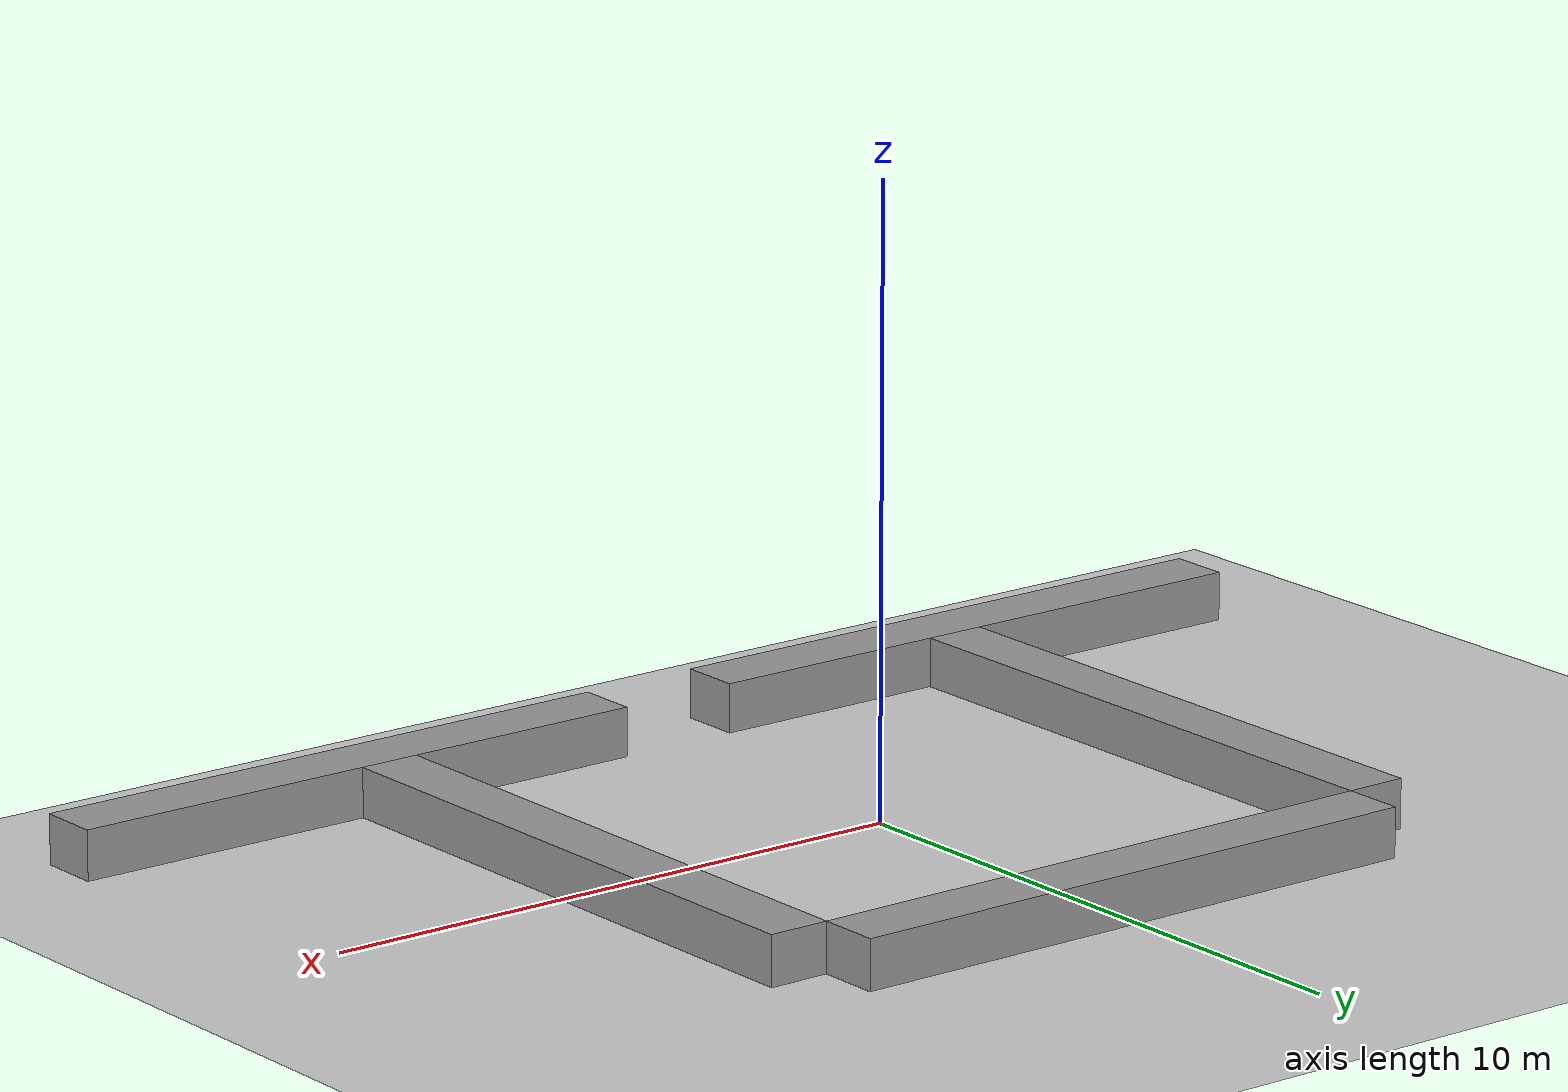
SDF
<sdf version='1.6'>
  <world name='default'>
    <light name='sun' type='directional'>
      <cast_shadows>1</cast_shadows>
      <pose frame=''>0 0 10 0 -0 0</pose>
      <diffuse>0.8 0.8 0.8 1</diffuse>
      <specular>0.1 0.1 0.1 1</specular>
      <attenuation>
        <range>1000</range>
        <constant>0.9</constant>
        <linear>0.01</linear>
        <quadratic>0.001</quadratic>
      </attenuation>
      <direction>-0.5 0.5 -1</direction>
    </light>
    <model name='ground_plane'>
      <static>1</static>
      <link name='link'>
        <collision name='collision'>
          <geometry>
            <plane>
              <normal>0 0 1</normal>
              <size>100 100</size>
            </plane>
          </geometry>
          <surface>
            <friction>
              <ode>
                <mu>1</mu>
                <mu2>1</mu2>
              </ode>
              <torsional>
                <ode/>
              </torsional>
            </friction>
            <contact>
              <ode/>
            </contact>
            <bounce/>
          </surface>
          <max_contacts>10</max_contacts>
        </collision>
        <visual name='visual'>
          <cast_shadows>0</cast_shadows>
          <geometry>
            <plane>
              <normal>0 0 1</normal>
              <size>100 100</size>
            </plane>
          </geometry>
          <material>
            <script>
              <uri>file://media/materials/scripts/gazebo.material</uri>
              <name>Gazebo/Grey</name>
            </script>
          </material>
        </visual>
        <self_collide>0</self_collide>
        <kinematic>0</kinematic>
        <gravity>1</gravity>
      </link>
    </model>
    <gravity>0 0 -9.8</gravity>
    <magnetic_field>6e-06 2.3e-05 -4.2e-05</magnetic_field>
    <atmosphere type='adiabatic'/>
    <physics name='default_physics' default='0' type='bullet'>
      <max_step_size>0.001</max_step_size>
      <real_time_factor>1</real_time_factor>
      <real_time_update_rate>1000</real_time_update_rate>
    </physics>
    <scene>
      <ambient>0.4 0.4 0.4 1</ambient>
      <background>0.7 0.7 0.7 1</background>
      <shadows>1</shadows>
    </scene>
    <spherical_coordinates>
      <surface_model>EARTH_WGS84</surface_model>
      <latitude_deg>0</latitude_deg>
      <longitude_deg>0</longitude_deg>
      <elevation>0</elevation>
      <heading_deg>0</heading_deg>
    </spherical_coordinates>
    <model name='grey_wall_10'>
      <link name='link'>
        <pose frame=''>5.5 0 0.4 0 -0 1.5708</pose>
        <inertial>
          <mass>10</mass>
          <pose frame=''>0 0 0 0 -0 0</pose>
          <inertia>
            <ixx>1</ixx>
            <ixy>0</ixy>
            <ixz>0</ixz>
            <iyy>1</iyy>
            <iyz>0</iyz>
            <izz>1</izz>
          </inertia>
        </inertial>
        <self_collide>0</self_collide>
        <kinematic>0</kinematic>
        <gravity>1</gravity>
        <visual name='visual'>
          <cast_shadows>0</cast_shadows>
          <geometry>
            <box>
              <size>10 1 0.8</size>
            </box>
          </geometry>
          <material>
            <script>
              <uri>model://grey_wall/materials/scripts</uri>
              <uri>model://grey_wall/materials/textures</uri>
              <name>vrc/grey_wall</name>
            </script>
            <ambient>1 1 1 1</ambient>
            <diffuse>1 1 1 1</diffuse>
            <specular>0 0 0 1</specular>
            <emissive>0 0 0 1</emissive>
            <shader type='vertex'>
              <normal_map>__default__</normal_map>
            </shader>
          </material>
          <pose frame=''>0 0 0 0 -0 0</pose>
          <transparency>0</transparency>
        </visual>
        <collision name='collision'>
          <laser_retro>0</laser_retro>
          <max_contacts>10</max_contacts>
          <pose frame=''>0 0 0 0 -0 0</pose>
          <geometry>
            <box>
              <size>10 1 0.8</size>
            </box>
          </geometry>
          <surface>
            <friction>
              <ode>
                <mu>1</mu>
                <mu2>1</mu2>
                <fdir1>0 0 0</fdir1>
                <slip1>0</slip1>
                <slip2>0</slip2>
              </ode>
              <torsional>
                <coefficient>1</coefficient>
                <patch_radius>0</patch_radius>
                <surface_radius>0</surface_radius>
                <use_patch_radius>1</use_patch_radius>
                <ode>
                  <slip>0</slip>
                </ode>
              </torsional>
            </friction>
            <bounce>
              <restitution_coefficient>0</restitution_coefficient>
              <threshold>1e+06</threshold>
            </bounce>
            <contact>
              <collide_without_contact>0</collide_without_contact>
              <collide_without_contact_bitmask>1</collide_without_contact_bitmask>
              <collide_bitmask>1</collide_bitmask>
              <ode>
                <soft_cfm>0</soft_cfm>
                <soft_erp>0.2</soft_erp>
                <kp>1e+13</kp>
                <kd>1</kd>
                <max_vel>0.01</max_vel>
                <min_depth>0</min_depth>
              </ode>
              <bullet>
                <split_impulse>1</split_impulse>
                <split_impulse_penetration_threshold>-0.01</split_impulse_penetration_threshold>
                <soft_cfm>0</soft_cfm>
                <soft_erp>0.2</soft_erp>
                <kp>1e+13</kp>
                <kd>1</kd>
              </bullet>
            </contact>
          </surface>
        </collision>
      </link>
      <static>1</static>
      <allow_auto_disable>1</allow_auto_disable>
    </model>
    <model name='grey_wall_10_clone'>
      <link name='link'>
        <pose frame=''>0 5.5 0.4 0 -0 0</pose>
        <inertial>
          <mass>10</mass>
          <pose frame=''>0 0 0 0 -0 0</pose>
          <inertia>
            <ixx>1</ixx>
            <ixy>0</ixy>
            <ixz>0</ixz>
            <iyy>1</iyy>
            <iyz>0</iyz>
            <izz>1</izz>
          </inertia>
        </inertial>
        <self_collide>0</self_collide>
        <kinematic>0</kinematic>
        <gravity>1</gravity>
        <visual name='visual'>
          <cast_shadows>0</cast_shadows>
          <geometry>
            <box>
              <size>10 1 0.8</size>
            </box>
          </geometry>
          <material>
            <script>
              <uri>model://grey_wall/materials/scripts</uri>
              <uri>model://grey_wall/materials/textures</uri>
              <name>vrc/grey_wall</name>
            </script>
            <ambient>1 1 1 1</ambient>
            <diffuse>1 1 1 1</diffuse>
            <specular>0 0 0 1</specular>
            <emissive>0 0 0 1</emissive>
            <shader type='vertex'>
              <normal_map>__default__</normal_map>
            </shader>
          </material>
          <pose frame=''>0 0 0 0 -0 0</pose>
          <transparency>0</transparency>
        </visual>
        <collision name='collision'>
          <laser_retro>0</laser_retro>
          <max_contacts>10</max_contacts>
          <pose frame=''>0 0 0 0 -0 0</pose>
          <geometry>
            <box>
              <size>10 1 0.8</size>
            </box>
          </geometry>
          <surface>
            <friction>
              <ode>
                <mu>1</mu>
                <mu2>1</mu2>
                <fdir1>0 0 0</fdir1>
                <slip1>0</slip1>
                <slip2>0</slip2>
              </ode>
              <torsional>
                <coefficient>1</coefficient>
                <patch_radius>0</patch_radius>
                <surface_radius>0</surface_radius>
                <use_patch_radius>1</use_patch_radius>
                <ode>
                  <slip>0</slip>
                </ode>
              </torsional>
            </friction>
            <bounce>
              <restitution_coefficient>0</restitution_coefficient>
              <threshold>1e+06</threshold>
            </bounce>
            <contact>
              <collide_without_contact>0</collide_without_contact>
              <collide_without_contact_bitmask>1</collide_without_contact_bitmask>
              <collide_bitmask>1</collide_bitmask>
              <ode>
                <soft_cfm>0</soft_cfm>
                <soft_erp>0.2</soft_erp>
                <kp>1e+13</kp>
                <kd>1</kd>
                <max_vel>0.01</max_vel>
                <min_depth>0</min_depth>
              </ode>
              <bullet>
                <split_impulse>1</split_impulse>
                <split_impulse_penetration_threshold>-0.01</split_impulse_penetration_threshold>
                <soft_cfm>0</soft_cfm>
                <soft_erp>0.2</soft_erp>
                <kp>1e+13</kp>
                <kd>1</kd>
              </bullet>
            </contact>
          </surface>
        </collision>
      </link>
      <static>1</static>
      <allow_auto_disable>1</allow_auto_disable>
    </model>
    <model name='grey_wall_10_clone_0'>
      <link name='link'>
	<pose frame=''>-5.5 0 0.4 0 -0 1.5708</pose>
        <inertial>
          <mass>10</mass>
          <pose frame=''>0 0 0 0 -0 0</pose>
          <inertia>
            <ixx>1</ixx>
            <ixy>0</ixy>
            <ixz>0</ixz>
            <iyy>1</iyy>
            <iyz>0</iyz>
            <izz>1</izz>
          </inertia>
        </inertial>
        <self_collide>0</self_collide>
        <kinematic>0</kinematic>
        <gravity>1</gravity>
        <visual name='visual'>
          <cast_shadows>0</cast_shadows>
          <geometry>
            <box>
              <size>10 1 0.8</size>
            </box>
          </geometry>
          <material>
            <script>
              <uri>model://grey_wall/materials/scripts</uri>
              <uri>model://grey_wall/materials/textures</uri>
              <name>vrc/grey_wall</name>
            </script>
            <ambient>1 1 1 1</ambient>
            <diffuse>1 1 1 1</diffuse>
            <specular>0 0 0 1</specular>
            <emissive>0 0 0 1</emissive>
            <shader type='vertex'>
              <normal_map>__default__</normal_map>
            </shader>
          </material>
          <pose frame=''>0 0 0 0 -0 0</pose>
          <transparency>0</transparency>
        </visual>
        <collision name='collision'>
          <laser_retro>0</laser_retro>
          <max_contacts>10</max_contacts>
          <pose frame=''>0 0 0 0 -0 0</pose>
          <geometry>
            <box>
              <size>10 1 0.8</size>
            </box>
          </geometry>
          <surface>
            <friction>
              <ode>
                <mu>1</mu>
                <mu2>1</mu2>
                <fdir1>0 0 0</fdir1>
                <slip1>0</slip1>
                <slip2>0</slip2>
              </ode>
              <torsional>
                <coefficient>1</coefficient>
                <patch_radius>0</patch_radius>
                <surface_radius>0</surface_radius>
                <use_patch_radius>1</use_patch_radius>
                <ode>
                  <slip>0</slip>
                </ode>
              </torsional>
            </friction>
            <bounce>
              <restitution_coefficient>0</restitution_coefficient>
              <threshold>1e+06</threshold>
            </bounce>
            <contact>
              <collide_without_contact>0</collide_without_contact>
              <collide_without_contact_bitmask>1</collide_without_contact_bitmask>
              <collide_bitmask>1</collide_bitmask>
              <ode>
                <soft_cfm>0</soft_cfm>
                <soft_erp>0.2</soft_erp>
                <kp>1e+13</kp>
                <kd>1</kd>
                <max_vel>0.01</max_vel>
                <min_depth>0</min_depth>
              </ode>
              <bullet>
                <split_impulse>1</split_impulse>
                <split_impulse_penetration_threshold>-0.01</split_impulse_penetration_threshold>
                <soft_cfm>0</soft_cfm>
                <soft_erp>0.2</soft_erp>
                <kp>1e+13</kp>
                <kd>1</kd>
              </bullet>
            </contact>
          </surface>
        </collision>
      </link>
      <static>1</static>
      <allow_auto_disable>1</allow_auto_disable>
    </model>
    <model name='grey_wall_10_clone_1'>
      <link name='link'>
	<pose frame=''>6 -5.5 0.4 0 -0 0</pose>
        <inertial>
          <mass>10</mass>
          <pose frame=''>0 0 0 0 -0 0</pose>
          <inertia>
            <ixx>1</ixx>
            <ixy>0</ixy>
            <ixz>0</ixz>
            <iyy>1</iyy>
            <iyz>0</iyz>
            <izz>1</izz>
          </inertia>
        </inertial>
        <self_collide>0</self_collide>
        <kinematic>0</kinematic>
        <gravity>1</gravity>
        <visual name='visual'>
          <cast_shadows>0</cast_shadows>
          <geometry>
            <box>
              <size>10 1 0.8</size>
            </box>
          </geometry>
          <material>
            <script>
              <uri>model://grey_wall/materials/scripts</uri>
              <uri>model://grey_wall/materials/textures</uri>
              <name>vrc/grey_wall</name>
            </script>
            <ambient>1 1 1 1</ambient>
            <diffuse>1 1 1 1</diffuse>
            <specular>0 0 0 1</specular>
            <emissive>0 0 0 1</emissive>
            <shader type='vertex'>
              <normal_map>__default__</normal_map>
            </shader>
          </material>
          <pose frame=''>0 0 0 0 -0 0</pose>
          <transparency>0</transparency>
        </visual>
        <collision name='collision'>
          <laser_retro>0</laser_retro>
          <max_contacts>10</max_contacts>
          <pose frame=''>0 0 0 0 -0 0</pose>
          <geometry>
            <box>
              <size>10 1 0.8</size>
            </box>
          </geometry>
          <surface>
            <friction>
              <ode>
                <mu>1</mu>
                <mu2>1</mu2>
                <fdir1>0 0 0</fdir1>
                <slip1>0</slip1>
                <slip2>0</slip2>
              </ode>
              <torsional>
                <coefficient>1</coefficient>
                <patch_radius>0</patch_radius>
                <surface_radius>0</surface_radius>
                <use_patch_radius>1</use_patch_radius>
                <ode>
                  <slip>0</slip>
                </ode>
              </torsional>
            </friction>
            <bounce>
              <restitution_coefficient>0</restitution_coefficient>
              <threshold>1e+06</threshold>
            </bounce>
            <contact>
              <collide_without_contact>0</collide_without_contact>
              <collide_without_contact_bitmask>1</collide_without_contact_bitmask>
              <collide_bitmask>1</collide_bitmask>
              <ode>
                <soft_cfm>0</soft_cfm>
                <soft_erp>0.2</soft_erp>
                <kp>1e+13</kp>
                <kd>1</kd>
                <max_vel>0.01</max_vel>
                <min_depth>0</min_depth>
              </ode>
              <bullet>
                <split_impulse>1</split_impulse>
                <split_impulse_penetration_threshold>-0.01</split_impulse_penetration_threshold>
                <soft_cfm>0</soft_cfm>
                <soft_erp>0.2</soft_erp>
                <kp>1e+13</kp>
                <kd>1</kd>
              </bullet>
            </contact>
          </surface>
        </collision>
      </link>
      <static>1</static>
      <allow_auto_disable>1</allow_auto_disable>
    </model>
    <model name='grey_wall_10_clone_2'>
      <link name='link'>
	<pose frame=''>-6 -5.5 0.4 0 -0 0</pose>
        <inertial>
          <mass>10</mass>
          <pose frame=''>0 0 0 0 -0 0</pose>
          <inertia>
            <ixx>1</ixx>
            <ixy>0</ixy>
            <ixz>0</ixz>
            <iyy>1</iyy>
            <iyz>0</iyz>
            <izz>1</izz>
          </inertia>
        </inertial>
        <self_collide>0</self_collide>
        <kinematic>0</kinematic>
        <gravity>1</gravity>
        <visual name='visual'>
          <cast_shadows>0</cast_shadows>
          <geometry>
            <box>
              <size>10 1 0.8</size>
            </box>
          </geometry>
          <material>
            <script>
              <uri>model://grey_wall/materials/scripts</uri>
              <uri>model://grey_wall/materials/textures</uri>
              <name>vrc/grey_wall</name>
            </script>
            <ambient>1 1 1 1</ambient>
            <diffuse>1 1 1 1</diffuse>
            <specular>0 0 0 1</specular>
            <emissive>0 0 0 1</emissive>
            <shader type='vertex'>
              <normal_map>__default__</normal_map>
            </shader>
          </material>
          <pose frame=''>0 0 0 0 -0 0</pose>
          <transparency>0</transparency>
        </visual>
        <collision name='collision'>
          <laser_retro>0</laser_retro>
          <max_contacts>10</max_contacts>
          <pose frame=''>0 0 0 0 -0 0</pose>
          <geometry>
            <box>
              <size>10 1 0.8</size>
            </box>
          </geometry>
          <surface>
            <friction>
              <ode>
                <mu>1</mu>
                <mu2>1</mu2>
                <fdir1>0 0 0</fdir1>
                <slip1>0</slip1>
                <slip2>0</slip2>
              </ode>
              <torsional>
                <coefficient>1</coefficient>
                <patch_radius>0</patch_radius>
                <surface_radius>0</surface_radius>
                <use_patch_radius>1</use_patch_radius>
                <ode>
                  <slip>0</slip>
                </ode>
              </torsional>
            </friction>
            <bounce>
              <restitution_coefficient>0</restitution_coefficient>
              <threshold>1e+06</threshold>
            </bounce>
            <contact>
              <collide_without_contact>0</collide_without_contact>
              <collide_without_contact_bitmask>1</collide_without_contact_bitmask>
              <collide_bitmask>1</collide_bitmask>
              <ode>
                <soft_cfm>0</soft_cfm>
                <soft_erp>0.2</soft_erp>
                <kp>1e+13</kp>
                <kd>1</kd>
                <max_vel>0.01</max_vel>
                <min_depth>0</min_depth>
              </ode>
              <bullet>
                <split_impulse>1</split_impulse>
                <split_impulse_penetration_threshold>-0.01</split_impulse_penetration_threshold>
                <soft_cfm>0</soft_cfm>
                <soft_erp>0.2</soft_erp>
                <kp>1e+13</kp>
                <kd>1</kd>
              </bullet>
            </contact>
          </surface>
        </collision>
      </link>
      <static>1</static>
      <allow_auto_disable>1</allow_auto_disable>
    </model>
    <gui fullscreen='0'>
      <camera name='user_camera'>
        <pose frame=''>0 12 12 0 0.8 -1.57080</pose>
        <view_controller>orbit</view_controller>
        <projection_type>perspective</projection_type>
      </camera>
    </gui>
  </world>
</sdf>
